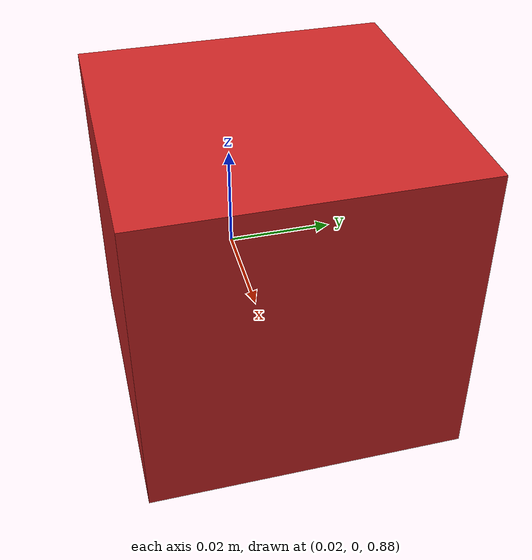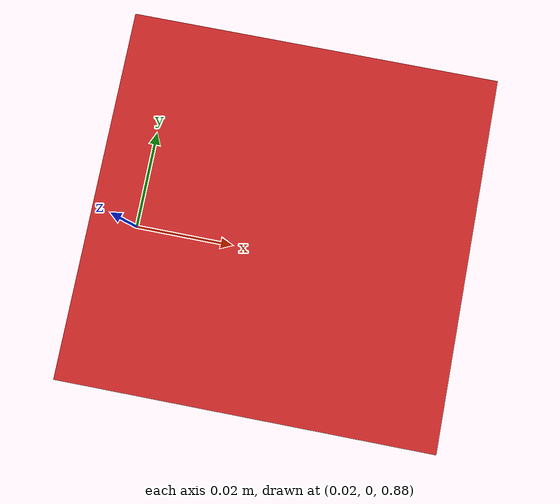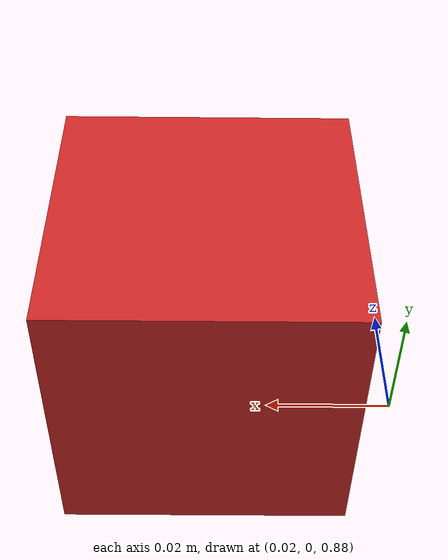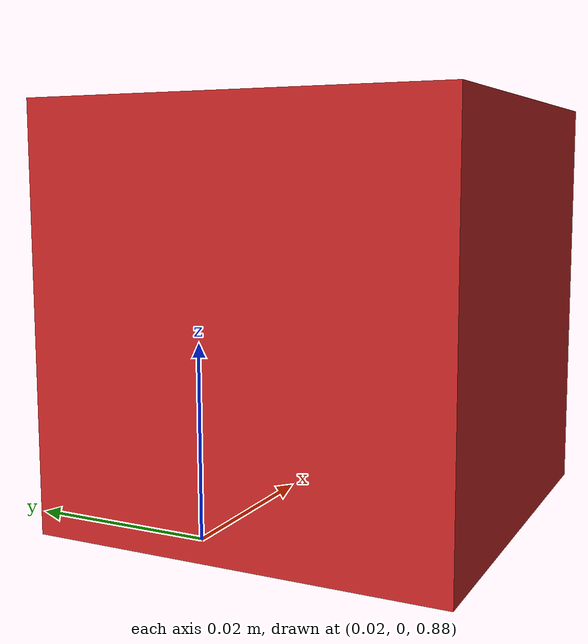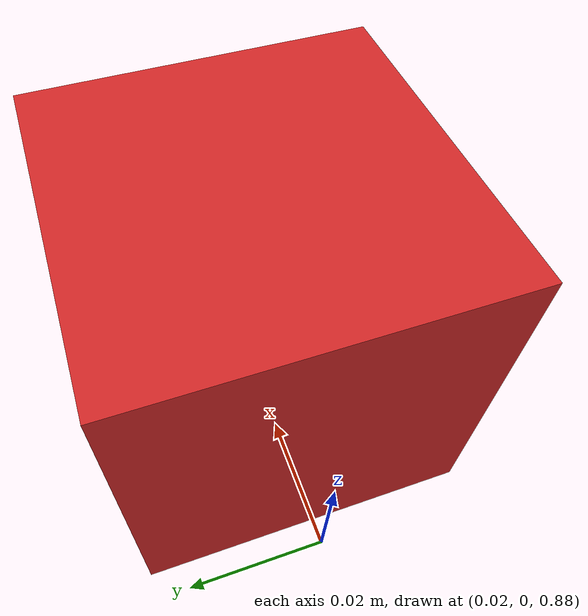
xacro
<?xml version="1.0"?>
<!-- Revolute-Revolute Manipulator -->
<robot name="cam1" xmlns:xacro="http://www.ros.org/wiki/xacro">

  <!-- Constants for robot dimensions -->
  <xacro:property name="PI" value="3.1415926535897931"/>
  <xacro:property name="mass" value="1" /> <!-- arbitrary value for mass -->
  <xacro:property name="width" value="0.1" /> <!-- Square dimensions (widthxwidth) of beams -->
  <xacro:property name="height1" value="2" /> <!-- Link 1 -->
  <xacro:property name="height2" value="1" /> <!-- Link 2 -->
  <xacro:property name="height3" value="1" /> <!-- Link 3 -->
  <xacro:property name="camera_link" value="0.05" /> <!-- Size of square 'camera' box -->
  <xacro:property name="axel_offset" value="0.05" /> <!-- Space btw top of beam and the each joint -->

  <!-- Import all Gazebo-customization elements, including Gazebo colors -->
  <xacro:include filename="$(find cam_test)/models/cam1.gazebo" />
  <!-- Import Rviz colors -->
  <xacro:include filename="$(find rrbot_description)/urdf/materials.xacro" />

  <!-- Used for fixing robot to Gazebo 'base_link' -->
  <link name="world"/>

  <joint name="camera_joint" type="continuous">
    <axis xyz="0 0 0" />
    <origin xyz="${camera_link} 0 ${height3 - axel_offset*2}" rpy="0 0 0"/>
    <parent link="world"/>
    <child link="camera_link"/>
  </joint>

  <!-- Camera -->
  <link name="camera_link">
    <collision>
      <origin xyz="0 0 0" rpy="0 0 0"/>
      <geometry>
  <box size="${camera_link} ${camera_link} ${camera_link}"/>
      </geometry>
    </collision>

    <visual>
      <origin xyz="0 0 0" rpy="0 0 0"/>
      <geometry>
  <box size="${camera_link} ${camera_link} ${camera_link}"/>
      </geometry>
      <material name="red"/>
    </visual>

    <inertial>
      <mass value="1e-5" />
      <origin xyz="0 0 0" rpy="0 0 0"/>
      <inertia ixx="1e-6" ixy="0" ixz="0" iyy="1e-6" iyz="0" izz="1e-6" />
    </inertial>
  </link>

  <!-- generate an optical frame http://www.ros.org/reps/rep-0103.html#suffix-frames
      so that ros and opencv can operate on the camera frame correctly -->
  <joint name="camera_optical_joint" type="continuous">
    <!-- these values have to be these values otherwise the gazebo camera image
        won't be aligned properly with the frame it is supposedly originating from -->
    <origin xyz="0 0 0" rpy="${-pi/2} 0 ${-pi/2}"/>
    <parent link="camera_link"/>
    <child link="camera_link_optical"/>
  </joint>

  <link name="camera_link_optical">
  </link>
</robot>
